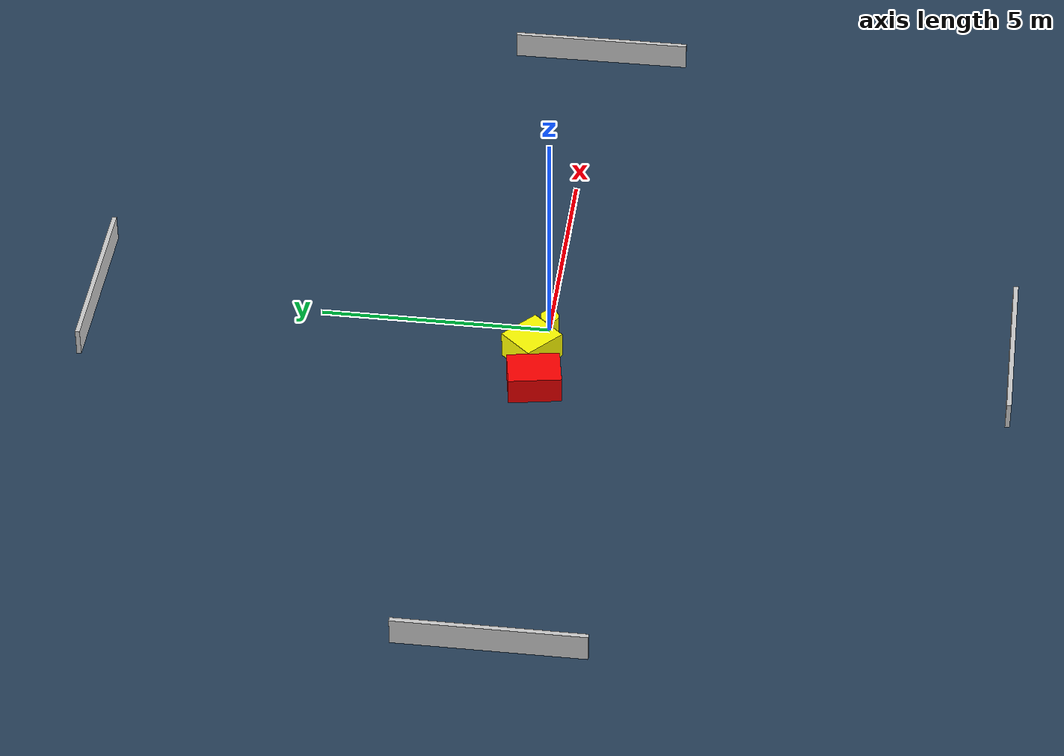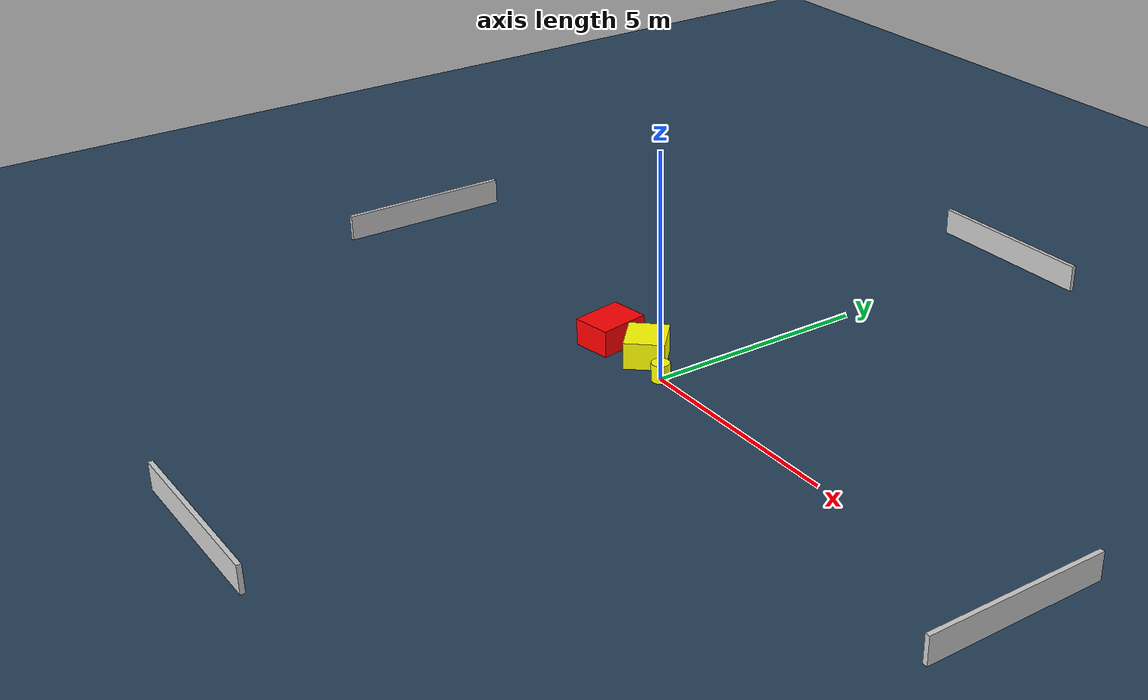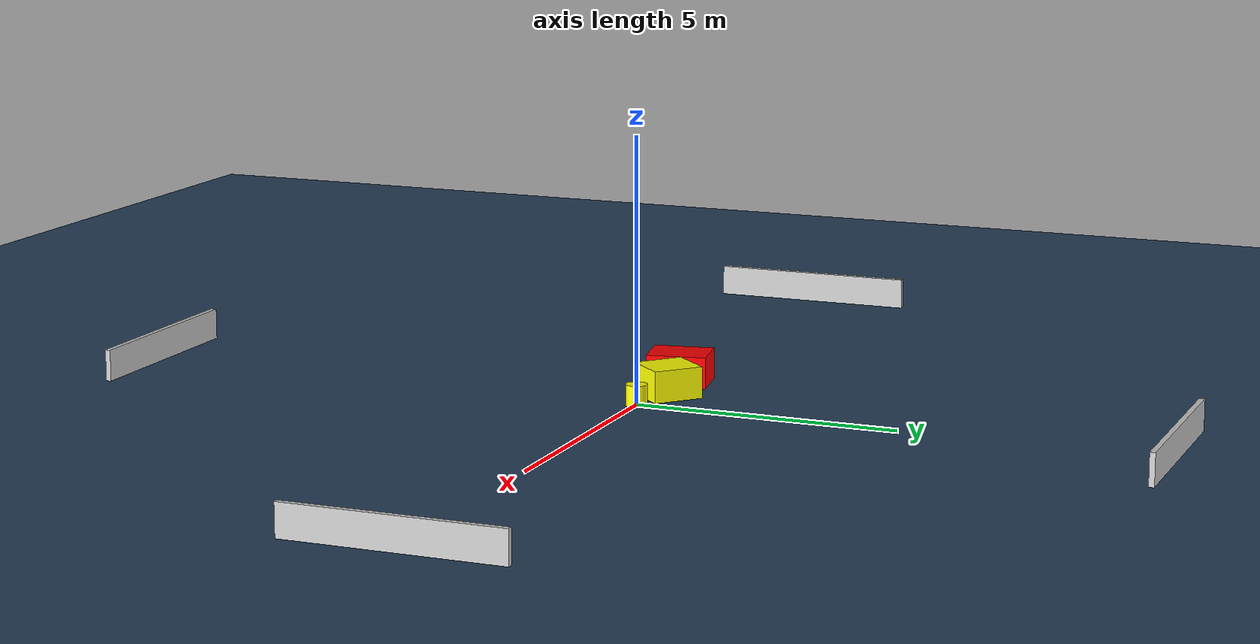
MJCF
<?xml version="1.0" ?>
<mujoco model="generated_environment">
  <option timestep="0.01" integrator="RK4" cone="elliptic"/>
  <default>
    <geom density="1"/>
  </default>
  <asset>
    <texture builtin="gradient" height="3072" name="skybox" rgb1="0.3 0.5 0.7" rgb2="0 0 0" type="skybox" width="512"/>
    <texture builtin="checker" height="300" name="groundplane" rgb1="0.2 0.3 0.4" rgb2="0.1 0.2 0.3" type="2d" width="300"/>
    <material name="groundplane" reflectance="0.2" texrepeat="5 5" texture="groundplane"/>
  </asset>
  <worldbody>
    <light dir="0 0 -1" directional="true" pos="0 0 1.5"/>
    <geom condim="3" friction="0.5 0.005 0.001" material="groundplane" name="floor" pos="0 0 0" size="0 0 0.05" type="plane"/>
    <body name="walls">
      <geom name="wall_1" condim="4" pos="-10.0 0.0 0.3" rgba="0.800000011920929 0.800000011920929 0.800000011920929 1.0" size="0.05 2.0 0.3" type="box"/>
      <geom name="wall_2" condim="4" pos="10.0 0.0 0.3" rgba="0.800000011920929 0.800000011920929 0.800000011920929 1.0" size="0.05 2.0 0.3" type="box"/>
      <geom name="wall_3" condim="4" pos="0.0 -10.0 0.3" rgba="0.800000011920929 0.800000011920929 0.800000011920929 1.0" size="2.0 0.05 0.3" type="box"/>
      <geom name="wall_4" condim="4" pos="0.0 10.0 0.3" rgba="0.800000011920929 0.800000011920929 0.800000011920929 1.0" size="2.0 0.05 0.3" type="box"/>
    </body>
    <body name="robot">
      <joint name="joint_x" type="slide" pos="0 0 0" axis="1 0 0"/>
      <joint name="joint_y" type="slide" pos="0 0 0" axis="0 1 0"/>
      <geom name="robot" type="cylinder" pos="0.0 0.0 0.2" size="0.2 0.2 0.0" mass="5.0" friction="1.0 0.005 0.0001" condim="4" rgba="1.0 1.0 0.0 1.0"/>
    </body>
    <body name="obstacle_1_movable">
      <geom name="obstacle_1_movable" condim="4" pos="-0.8881209710405336 0.27740682166790787 0.3" euler="0 0 317.9825324452311" friction="0.0 0.005 0.001" rgba="1.0 1.0 0.0 1.0" size="0.48383169494821443 0.4385326081647537 0.3" type="box" mass="0.1"/>
      <joint type="free"/>
    </body>
    <body name="obstacle_2_static">
      <geom name="obstacle_2_static" condim="4" pos="-1.9727281910445964 0.09632363156788766 0.3" euler="0 0 99.79248862971102" friction="0.0 0.005 0.001" rgba="1.0 0.0 0.0 1.0" size="0.5695341467057661 0.44113048797014864 0.3" type="box"/>
    </body>
  </worldbody>
  <actuator>
    <motor name="actuator_x" joint="joint_x" gear="1" ctrlrange="-1 1"/>
    <motor name="actuator_y" joint="joint_y" gear="1" ctrlrange="-1 1"/>
  </actuator>
</mujoco>
